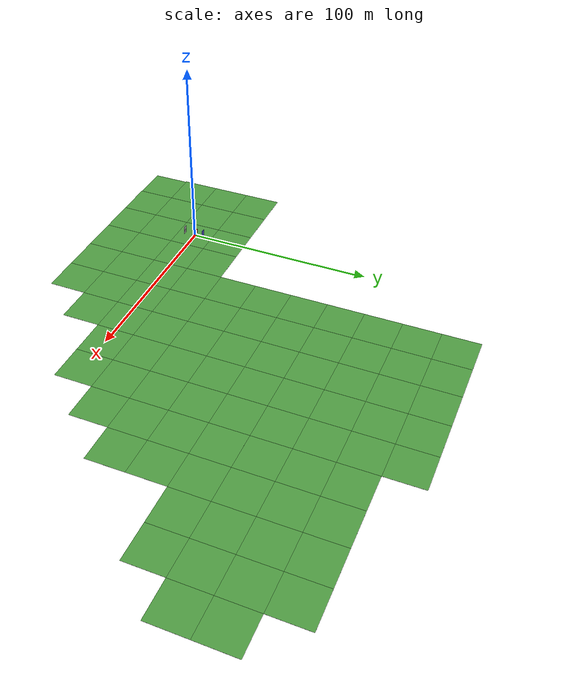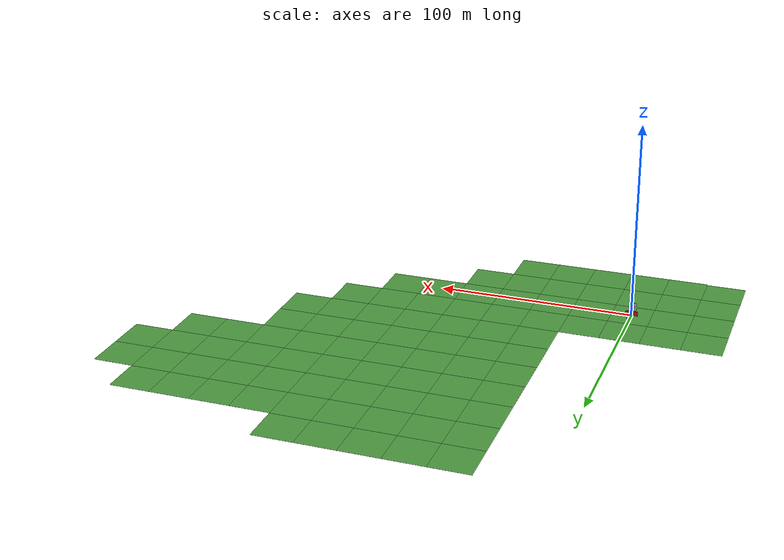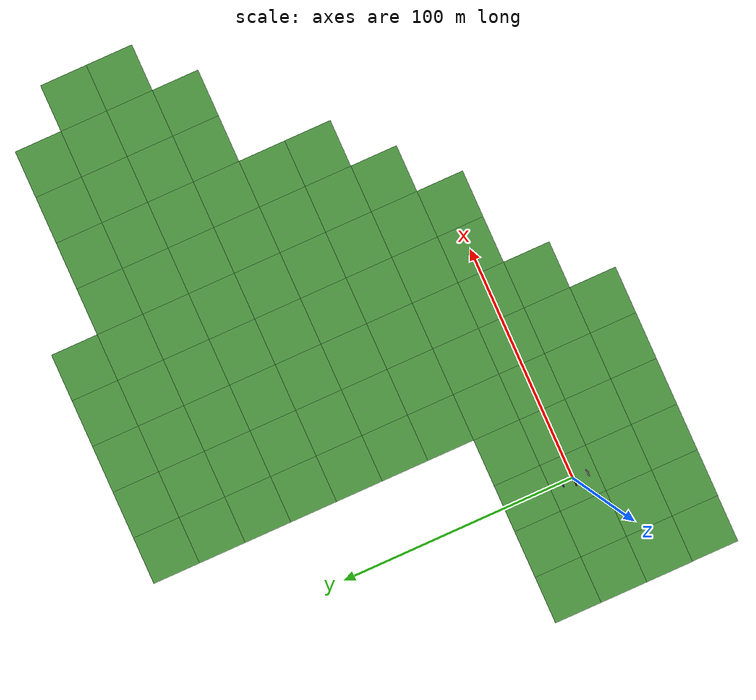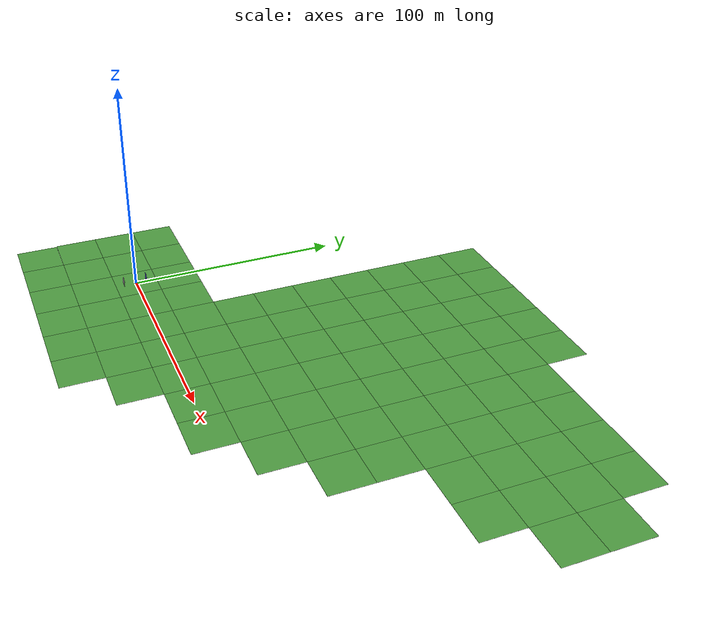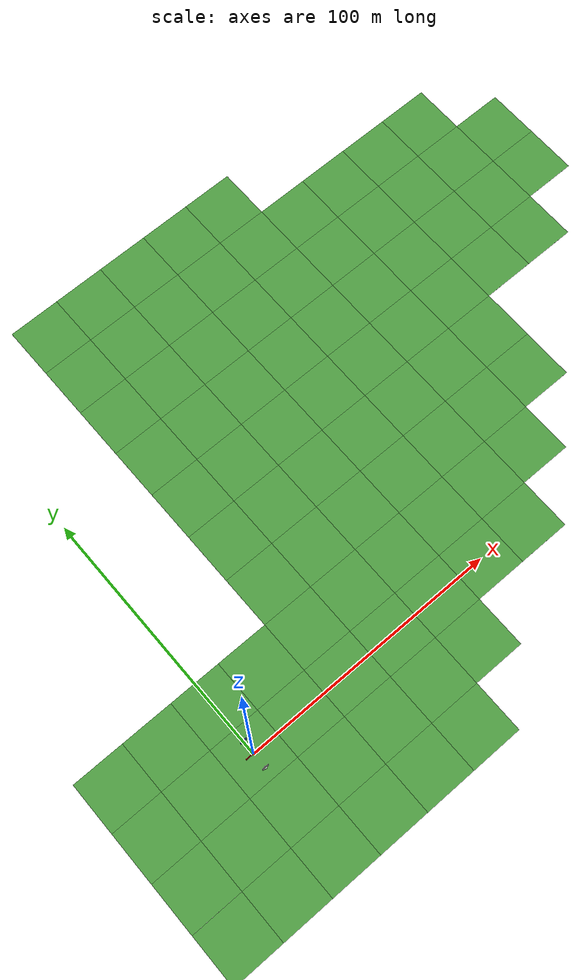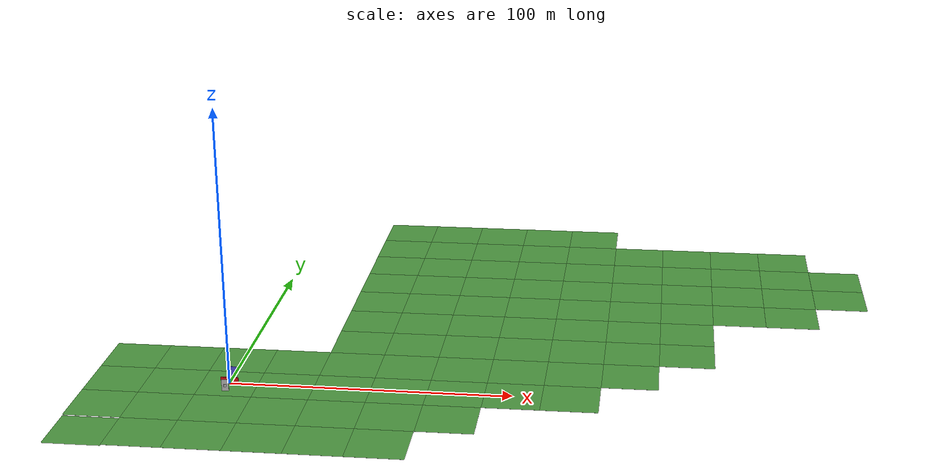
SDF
<sdf version="1.5">
 <world name="default">
  <include><uri>model://wall1</uri><pose>0 5 0 0 0 0</pose></include>
  <include><uri>model://wall2</uri></include>
  <include><uri>model://wall3</uri><pose>0 -6 0 0 0 0</pose></include>
  <include><uri>model://wall4</uri><pose>0 -6 0 0 0 0</pose></include>
  <include><uri>model://sun</uri></include>
  <light name="user_point_light_0" type="point">
   <pose>7.53258 -10.5204 1 0 -0 0</pose>
   <diffuse>0.5 0.5 0.5 1</diffuse>
   <specular>0.1 0.1 0.1 1</specular>
   <attenuation>
    <range>37</range>
    <constant>1</constant>
    <linear>0.05</linear>
    <quadratic>0.001</quadratic>
   </attenuation>
   <cast_shadows>0</cast_shadows>
   <direction>0 0 -1</direction>
  </light>
  <light name="user_point_light_0_clone" type="point">
   <pose>-13.5592 -18.4336 10 0 -0 0</pose>
   <diffuse>0.498039 0.498039 0.498039 1</diffuse>
   <specular>0 0 0 1</specular>
   <direction>0 0 -1</direction>
   <attenuation>
    <range>37</range>
    <constant>1</constant>
    <linear>0.05</linear>
    <quadratic>0.001</quadratic>
   </attenuation>
  </light>
  <light name="user_point_light_1" type="point">
   <pose>-11.0322 15.4092 1 0 -0 0</pose>
   <diffuse>0.5 0.5 0.5 1</diffuse>
   <specular>0.1 0.1 0.1 1</specular>
   <attenuation>
    <range>20</range>
    <constant>0.5</constant>
    <linear>0.01</linear>
    <quadratic>0.001</quadratic>
   </attenuation>
   <cast_shadows>0</cast_shadows>
   <direction>0 0 -1</direction>
  </light>
  <light name="user_point_light_2" type="point">
   <pose>7.67436 15.2643 1 0 -0 0</pose>
   <diffuse>0.5 0.5 0.5 1</diffuse>
   <specular>0.1 0.1 0.1 1</specular>
   <attenuation>
    <range>20</range>
    <constant>0.5</constant>
    <linear>0.01</linear>
    <quadratic>0.001</quadratic>
   </attenuation>
   <cast_shadows>0</cast_shadows>
   <direction>0 0 -1</direction>
  </light>
  <light name="user_point_light_3" type="point">
   <pose>-13.7195 0.042174 1 0 -0 0</pose>
   <diffuse>0.5 0.5 0.5 1</diffuse>
   <specular>0.1 0.1 0.1 1</specular>
   <attenuation>
    <range>20</range>
    <constant>0.5</constant>
    <linear>0.01</linear>
    <quadratic>0.001</quadratic>
   </attenuation>
   <cast_shadows>0</cast_shadows>
   <direction>0 0 -1</direction>
  </light>
  <light name="user_point_light_4" type="point">
   <pose>12.95 2.24523 1 0 -0 0</pose>
   <diffuse>0.5 0.5 0.5 1</diffuse>
   <specular>0.1 0.1 0.1 1</specular>
   <attenuation>
    <range>20</range>
    <constant>0.5</constant>
    <linear>0.01</linear>
    <quadratic>0.001</quadratic>
   </attenuation>
   <cast_shadows>0</cast_shadows>
   <direction>0 0 -1</direction>
  </light>
  <include><uri>model://grass_plane</uri></include>
  <scene>
   <shadows>0</shadows>
   <ambient>0.4 0.4 0.4 1.0</ambient>
   <background>0.7 0.7 0.7 1</background>
   <sky><clouds><speed>12</speed></clouds></sky>
  </scene>
  <plugin name="ros_interface_plugin" filename="librotors_gazebo_ros_interface_plugin.so"/>
  <physics name="default_physics" default="0" type="ode">
   <gravity>0 0 -9.8066</gravity>
   <ode>
    <solver>
     <type>quick</type>
     <iters>10</iters>
     <sor>1.3</sor>
     <use_dynamic_moi_rescaling>0</use_dynamic_moi_rescaling>
    </solver>
    <constraints>
     <cfm>0</cfm>
     <erp>0.2</erp>
     <contact_max_correcting_vel>100</contact_max_correcting_vel>
     <contact_surface_layer>0.001</contact_surface_layer>
    </constraints>
   </ode>
   <max_step_size>0.004</max_step_size>
   <real_time_factor>1</real_time_factor>
   <real_time_update_rate>250</real_time_update_rate>
   <magnetic_field>6.0e-6 2.3e-5 -4.2e-5</magnetic_field>
  </physics>
 </world>
</sdf>

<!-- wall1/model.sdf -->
<sdf version='1.6'>
  <model name='wall1'>
    <link name='pared1'>
      <pose frame=''>0 0 2.133 0 0 0</pose>
      <inertial>
        <mass>10000</mass>
        <inertia>
          <ixx>99999999999</ixx>
          <ixy>0</ixy>
          <ixz>0</ixz>
          <iyy>99999999999</iyy>
          <iyz>0</iyz>
          <izz>99999999999</izz>
        </inertia>
        <pose frame=''>0 0 0 0 -0 0</pose>
      </inertial>
      <self_collide>0</self_collide>
      <kinematic>0</kinematic>
      <gravity>1</gravity>
      <visual name='visual'>
        <geometry>
          <box>
            <size>2.5 0.150783 4.266</size>
          </box>
        </geometry>
        <material>
          <!-- Blue -->
          <ambient>0 0 1 1</ambient>
          <diffuse>0.3 0.3 0.8 1</diffuse>
          <specular>0.01 0.1 0.01 1</specular>
          <emissive>0 0 0 1</emissive>
          <shader type='vertex'>
            <normal_map>__default__</normal_map>
          </shader>
        </material>
        <pose frame=''>0 0 0 0 -0 0</pose>
        <transparency>0</transparency>
        <cast_shadows>1</cast_shadows>
      </visual>
      <collision name='collision'>
        <laser_retro>0</laser_retro>
        <max_contacts>10</max_contacts>
        <pose frame=''>0 0 0 0 -0 0</pose>
        <geometry>
          <box>
            <size>2.5 0.150783 4.266</size>
          </box>
        </geometry>
        <surface>
          <friction>
            <ode>
              <mu>100</mu>
              <mu2>100</mu2>
              <fdir1>0 0 0</fdir1>
              <slip1>0</slip1>
              <slip2>0</slip2>
            </ode>
            <torsional>
              <coefficient>1</coefficient>
              <patch_radius>0</patch_radius>
              <surface_radius>0</surface_radius>
              <use_patch_radius>1</use_patch_radius>
              <ode>
                <slip>0</slip>
              </ode>
            </torsional>
          </friction>
          <bounce>
            <restitution_coefficient>0</restitution_coefficient>
            <threshold>1e+06</threshold>
          </bounce>
          <contact>
            <collide_without_contact>0</collide_without_contact>
            <collide_without_contact_bitmask>1</collide_without_contact_bitmask>
            <collide_bitmask>1</collide_bitmask>
            <ode>
              <soft_cfm>0</soft_cfm>
              <soft_erp>0.2</soft_erp>
              <kp>1e+13</kp>
              <kd>1</kd>
              <max_vel>0.01</max_vel>
              <min_depth>0</min_depth>
            </ode>
            <bullet>
              <split_impulse>1</split_impulse>
              <split_impulse_penetration_threshold>-0.01</split_impulse_penetration_threshold>
              <soft_cfm>0</soft_cfm>
              <soft_erp>0.2</soft_erp>
              <kp>1e+13</kp>
              <kd>1</kd>
            </bullet>
          </contact>
        </surface>
      </collision>
    </link>
    <static>0</static>
    <allow_auto_disable>1</allow_auto_disable>
    <plugin name="wall1plugin" filename="libwall1plugin.so"/>
  </model>
</sdf>

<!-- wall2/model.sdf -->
<sdf version='1.6'>
  <model name='wall2'>
    <link name='pared1'>
      <gravity>0</gravity>
      <pose frame=''>0 0 1.2 0 0 0</pose>
      <inertial>
        <mass>10000</mass>
        <inertia>
          <ixx>99999999999</ixx>
          <ixy>0</ixy>
          <ixz>0</ixz>
          <iyy>99999999999</iyy>
          <iyz>0</iyz>
          <izz>99999999999</izz>
        </inertia>
        <pose frame=''>0 0 0 0 -0 0</pose>
      </inertial>
      <self_collide>0</self_collide>
      <kinematic>0</kinematic>
      <gravity>1</gravity>
      <visual name='visual'>
        <geometry>
          <box>
            <size>6.266 0.150783 2.4</size>
          </box>
        </geometry>
        <material>
          <!-- Red -->
          <ambient>0.5 0.1 0.1 1</ambient>
          <diffuse>0.8 0.05 0.05 1</diffuse>
          <specular>0.01 0.1 0.01 1</specular>
          <emissive>0.1 0 0.1 1</emissive>
          <shader type='vertex'>
            <normal_map>__default__</normal_map>
          </shader>
        </material>
        <pose frame=''>0 0 0 0 -0 0</pose>
        <transparency>0</transparency>
        <cast_shadows>1</cast_shadows>
      </visual>
      <collision name='collision'>
        <laser_retro>0</laser_retro>
        <max_contacts>10</max_contacts>
        <pose frame=''>0 0 0 0 -0 0</pose>
        <geometry>
          <box>
            <size>6.266 0.150783 2.4</size>
          </box>
        </geometry>
        <surface>
          <friction>
            <ode>
              <mu>100</mu>
              <mu2>100</mu2>
              <fdir1>0 0 0</fdir1>
              <slip1>0</slip1>
              <slip2>0</slip2>
            </ode>
            <torsional>
              <coefficient>1</coefficient>
              <patch_radius>0</patch_radius>
              <surface_radius>0</surface_radius>
              <use_patch_radius>1</use_patch_radius>
              <ode>
                <slip>0</slip>
              </ode>
            </torsional>
          </friction>
          <bounce>
            <restitution_coefficient>0</restitution_coefficient>
            <threshold>1e+06</threshold>
          </bounce>
          <contact>
            <collide_without_contact>0</collide_without_contact>
            <collide_without_contact_bitmask>1</collide_without_contact_bitmask>
            <collide_bitmask>1</collide_bitmask>
            <ode>
              <soft_cfm>0</soft_cfm>
              <soft_erp>0.2</soft_erp>
              <kp>1e+13</kp>
              <kd>1</kd>
              <max_vel>0.01</max_vel>
              <min_depth>0</min_depth>
            </ode>
            <bullet>
              <split_impulse>1</split_impulse>
              <split_impulse_penetration_threshold>-0.01</split_impulse_penetration_threshold>
              <soft_cfm>0</soft_cfm>
              <soft_erp>0.2</soft_erp>
              <kp>1e+13</kp>
              <kd>1</kd>
            </bullet>
          </contact>
        </surface>
      </collision>
    </link>
    <static>0</static>
    <allow_auto_disable>1</allow_auto_disable>
    <plugin name="wall2plugin" filename="libwall2plugin.so"/>
  </model>
</sdf>

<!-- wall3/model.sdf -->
<sdf version='1.6'>
  <model name='wall3'>
    <link name='pared1'>
      <pose frame=''>0 0 2.133 0 0 0</pose>
      <inertial>
        <mass>10000</mass>
        <inertia>
          <ixx>99999999999</ixx>
          <ixy>0</ixy>
          <ixz>0</ixz>
          <iyy>99999999999</iyy>
          <iyz>0</iyz>
          <izz>99999999999</izz>
        </inertia>
        <pose frame=''>0 0 0 0 -0 0</pose>
      </inertial>
      <self_collide>0</self_collide>
      <kinematic>0</kinematic>
      <gravity>1</gravity>
      <visual name='visual'>
        <geometry>
          <box>
            <size>2.5 0.150783 4.266</size>
          </box>
        </geometry>
        <material>
          <!-- Cyan -->
          <ambient>0.698039 0.698039 0.698039 1</ambient>
          <diffuse>0.698039 0.698039 0.698039 1</diffuse>
          <specular>0.898039 0.898039 0.898039 1</specular>
          <emissive>0 0.945098 0.980392 1</emissive>
          <shader type='vertex'>
            <normal_map>__default__</normal_map>
          </shader>
        </material>
        <pose frame=''>0 0 0 0 -0 0</pose>
        <transparency>0</transparency>
        <cast_shadows>1</cast_shadows>
      </visual>
      <collision name='collision'>
        <laser_retro>0</laser_retro>
        <max_contacts>10</max_contacts>
        <pose frame=''>0 0 0 0 -0 0</pose>
        <geometry>
          <box>
            <size>2.5 0.150783 4.266</size>
          </box>
        </geometry>
        <surface>
          <friction>
            <ode>
              <mu>100</mu>
              <mu2>100</mu2>
              <fdir1>0 0 0</fdir1>
              <slip1>0</slip1>
              <slip2>0</slip2>
            </ode>
            <torsional>
              <coefficient>1</coefficient>
              <patch_radius>0</patch_radius>
              <surface_radius>0</surface_radius>
              <use_patch_radius>1</use_patch_radius>
              <ode>
                <slip>0</slip>
              </ode>
            </torsional>
          </friction>
          <bounce>
            <restitution_coefficient>0</restitution_coefficient>
            <threshold>1e+06</threshold>
          </bounce>
          <contact>
            <collide_without_contact>0</collide_without_contact>
            <collide_without_contact_bitmask>1</collide_without_contact_bitmask>
            <collide_bitmask>1</collide_bitmask>
            <ode>
              <soft_cfm>0</soft_cfm>
              <soft_erp>0.2</soft_erp>
              <kp>1e+13</kp>
              <kd>1</kd>
              <max_vel>0.01</max_vel>
              <min_depth>0</min_depth>
            </ode>
            <bullet>
              <split_impulse>1</split_impulse>
              <split_impulse_penetration_threshold>-0.01</split_impulse_penetration_threshold>
              <soft_cfm>0</soft_cfm>
              <soft_erp>0.2</soft_erp>
              <kp>1e+13</kp>
              <kd>1</kd>
            </bullet>
          </contact>
        </surface>
      </collision>
    </link>
    <static>0</static>
    <allow_auto_disable>1</allow_auto_disable>
    <plugin name="wall3plugin" filename="libwall3plugin.so"/>
  </model>
</sdf>

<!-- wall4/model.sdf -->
<sdf version='1.6'>
  <model name='wall4'>
    <link name='pared1'>
      <pose frame=''>0 0 2.133 0 0 0</pose>
      <inertial>
        <mass>10000</mass>
        <inertia>
          <ixx>99999999999</ixx>
          <ixy>0</ixy>
          <ixz>0</ixz>
          <iyy>99999999999</iyy>
          <iyz>0</iyz>
          <izz>99999999999</izz>
        </inertia>
        <pose frame=''>0 0 0 0 -0 0</pose>
      </inertial>
      <self_collide>0</self_collide>
      <kinematic>0</kinematic>
      <gravity>1</gravity>
      <visual name='visual'>
        <geometry>
          <cylinder>
              <radius>0.5</radius>
              <length>1</length>
          </cylinder>
        </geometry>
        <material>
          <!-- Yellow -->
          <ambient>0.698039 0.698039 0.698039 1</ambient>
          <diffuse>0.698039 0.698039 0.698039 1</diffuse>
          <specular>0.898039 0.898039 0.898039 1</specular>
          <emissive>1 1 0 1</emissive>
          <shader type='vertex'>
            <normal_map>__default__</normal_map>
          </shader>
        </material>
        <pose frame=''>0 0 0 0 -0 0</pose>
        <transparency>0</transparency>
        <cast_shadows>1</cast_shadows>
      </visual>
      <collision name='collision'>
        <laser_retro>0</laser_retro>
        <max_contacts>10</max_contacts>
        <pose frame=''>0 0 0 0 -0 0</pose>
        <geometry>
          <cylinder>
              <radius>0.5</radius>
              <length>1</length>
            </cylinder>
        </geometry>
        <surface>
          <friction>
            <ode>
              <mu>100</mu>
              <mu2>100</mu2>
              <fdir1>0 0 0</fdir1>
              <slip1>0</slip1>
              <slip2>0</slip2>
            </ode>
            <torsional>
              <coefficient>1</coefficient>
              <patch_radius>0</patch_radius>
              <surface_radius>0</surface_radius>
              <use_patch_radius>1</use_patch_radius>
              <ode>
                <slip>0</slip>
              </ode>
            </torsional>
          </friction>
          <bounce>
            <restitution_coefficient>0</restitution_coefficient>
            <threshold>1e+06</threshold>
          </bounce>
          <contact>
            <collide_without_contact>0</collide_without_contact>
            <collide_without_contact_bitmask>1</collide_without_contact_bitmask>
            <collide_bitmask>1</collide_bitmask>
            <ode>
              <soft_cfm>0</soft_cfm>
              <soft_erp>0.2</soft_erp>
              <kp>1e+13</kp>
              <kd>1</kd>
              <max_vel>0.01</max_vel>
              <min_depth>0</min_depth>
            </ode>
            <bullet>
              <split_impulse>1</split_impulse>
              <split_impulse_penetration_threshold>-0.01</split_impulse_penetration_threshold>
              <soft_cfm>0</soft_cfm>
              <soft_erp>0.2</soft_erp>
              <kp>1e+13</kp>
              <kd>1</kd>
            </bullet>
          </contact>
        </surface>
      </collision>
    </link>
    <static>0</static>
    <allow_auto_disable>1</allow_auto_disable>
    <plugin name="wall4plugin" filename="libwall4plugin.so"/>
  </model>
</sdf>

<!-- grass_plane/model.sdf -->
<sdf version='1.4'>
  <model name='grass_plane'>
    <static>true</static>
    <link name='link'>
      <collision name='collision'>
        <geometry>
          <plane>
            <normal>0 0 1</normal>
            <size>500 500</size>
          </plane>
        </geometry>
        <surface>
          <friction>
            <ode>
              <mu>0.5</mu>
              <mu2>.5</mu2>
            </ode>
          </friction>
        </surface>
      </collision>

      <visual name='visual_0'>
        <pose>-40 -40 0 0 0 0</pose>

        <cast_shadows>false</cast_shadows>
        <geometry>
          <plane>
            <normal>0 0 1</normal>
            <size>20 20</size>
          </plane>
        </geometry>
        <material>
          <script>
            <uri>model://../model_source/models/grass_plane/materials/scripts</uri>
            <uri>model://../model_source/models/grass_plane/materials/textures</uri>
            <name>vrc/grass</name>
          </script>
        </material>
      </visual>

      <visual name='visual_1'>
        <pose>-20 -40 0 0 0 0</pose>

        <cast_shadows>false</cast_shadows>
        <geometry>
          <plane>
            <normal>0 0 1</normal>
            <size>20 20</size>
          </plane>
        </geometry>
        <material>
          <script>
            <uri>model://../model_source/models/grass_plane/materials/scripts</uri>
            <uri>model://../model_source/models/grass_plane/materials/textures</uri>
            <name>vrc/grass</name>
          </script>
        </material>
      </visual>

      <visual name='visual_2'>
        <pose>0 -40 0 0 0 0</pose>

        <cast_shadows>false</cast_shadows>
        <geometry>
          <plane>
            <normal>0 0 1</normal>
            <size>20 20</size>
          </plane>
        </geometry>
        <material>
          <script>
            <uri>model://../model_source/models/grass_plane/materials/scripts</uri>
            <uri>model://../model_source/models/grass_plane/materials/textures</uri>
            <name>vrc/grass</name>
          </script>
        </material>
      </visual>

      <visual name='visual_3'>
        <pose>20 -40 0 0 0 0</pose>

        <cast_shadows>false</cast_shadows>
        <geometry>
          <plane>
            <normal>0 0 1</normal>
            <size>20 20</size>
          </plane>
        </geometry>
        <material>
          <script>
            <uri>model://../model_source/models/grass_plane/materials/scripts</uri>
            <uri>model://../model_source/models/grass_plane/materials/textures</uri>
            <name>vrc/grass</name>
          </script>
        </material>
      </visual>

      <visual name='visual_4'>
        <pose>40 -40 0 0 0 0</pose>

        <cast_shadows>false</cast_shadows>
        <geometry>
          <plane>
            <normal>0 0 1</normal>
            <size>20 20</size>
          </plane>
        </geometry>
        <material>
          <script>
            <uri>model://../model_source/models/grass_plane/materials/scripts</uri>
            <uri>model://../model_source/models/grass_plane/materials/textures</uri>
            <name>vrc/grass</name>
          </script>
        </material>
      </visual>

      <visual name='visual_5'>
        <pose>60 -40 0 0 0 0</pose>

        <cast_shadows>false</cast_shadows>
        <geometry>
          <plane>
            <normal>0 0 1</normal>
            <size>20 20</size>
          </plane>
        </geometry>
        <material>
          <script>
            <uri>model://../model_source/models/grass_plane/materials/scripts</uri>
            <uri>model://../model_source/models/grass_plane/materials/textures</uri>
            <name>vrc/grass</name>
          </script>
        </material>
      </visual>

      <visual name='visual_6'>
        <pose>-40 -20 0 0 0 0</pose>

        <cast_shadows>false</cast_shadows>
        <geometry>
          <plane>
            <normal>0 0 1</normal>
            <size>20 20</size>
          </plane>
        </geometry>
        <material>
          <script>
            <uri>model://../model_source/models/grass_plane/materials/scripts</uri>
            <uri>model://../model_source/models/grass_plane/materials/textures</uri>
            <name>vrc/grass</name>
          </script>
        </material>
      </visual>

      <visual name='visual_7'>
        <pose>-20 -20 0 0 0 0</pose>

        <cast_shadows>false</cast_shadows>
        <geometry>
          <plane>
            <normal>0 0 1</normal>
            <size>20 20</size>
          </plane>
        </geometry>
        <material>
          <script>
            <uri>model://../model_source/models/grass_plane/materials/scripts</uri>
            <uri>model://../model_source/models/grass_plane/materials/textures</uri>
            <name>vrc/grass</name>
          </script>
        </material>
      </visual>

      <visual name='visual_8'>
        <pose>0 -20 0 0 0 0</pose>

        <cast_shadows>false</cast_shadows>
        <geometry>
          <plane>
            <normal>0 0 1</normal>
            <size>20 20</size>
          </plane>
        </geometry>
        <material>
          <script>
            <uri>model://../model_source/models/grass_plane/materials/scripts</uri>
            <uri>model://../model_source/models/grass_plane/materials/textures</uri>
            <name>vrc/grass</name>
          </script>
        </material>
      </visual>

      <visual name='visual_9'>
        <pose>20 -20 0 0 0 0</pose>

        <cast_shadows>false</cast_shadows>
        <geometry>
          <plane>
            <normal>0 0 1</normal>
            <size>20 20</size>
          </plane>
        </geometry>
        <material>
          <script>
            <uri>model://../model_source/models/grass_plane/materials/scripts</uri>
            <uri>model://../model_source/models/grass_plane/materials/textures</uri>
            <name>vrc/grass</name>
          </script>
        </material>
      </visual>

      <visual name='visual_10'>
        <pose>40 -20 0 0 0 0</pose>

        <cast_shadows>false</cast_shadows>
        <geometry>
          <plane>
            <normal>0 0 1</normal>
            <size>20 20</size>
          </plane>
        </geometry>
        <material>
          <script>
            <uri>model://../model_source/models/grass_plane/materials/scripts</uri>
            <uri>model://../model_source/models/grass_plane/materials/textures</uri>
            <name>vrc/grass</name>
          </script>
        </material>
      </visual>

      <visual name='visual_11'>
        <pose>60 -20 0 0 0 0</pose>

        <cast_shadows>false</cast_shadows>
        <geometry>
          <plane>
            <normal>0 0 1</normal>
            <size>20 20</size>
          </plane>
        </geometry>
        <material>
          <script>
            <uri>model://../model_source/models/grass_plane/materials/scripts</uri>
            <uri>model://../model_source/models/grass_plane/materials/textures</uri>
            <name>vrc/grass</name>
          </script>
        </material>
      </visual>

      <visual name='visual_12'>
        <pose>80 -20 0 0 0 0</pose>

        <cast_shadows>false</cast_shadows>
        <geometry>
          <plane>
            <normal>0 0 1</normal>
            <size>20 20</size>
          </plane>
        </geometry>
        <material>
          <script>
            <uri>model://../model_source/models/grass_plane/materials/scripts</uri>
            <uri>model://../model_source/models/grass_plane/materials/textures</uri>
            <name>vrc/grass</name>
          </script>
        </material>
      </visual>

      <visual name='visual_13'>
        <pose>-40 0 0 0 0 0</pose>

        <cast_shadows>false</cast_shadows>
        <geometry>
          <plane>
            <normal>0 0 1</normal>
            <size>20 20</size>
          </plane>
        </geometry>
        <material>
          <script>
            <uri>model://../model_source/models/grass_plane/materials/scripts</uri>
            <uri>model://../model_source/models/grass_plane/materials/textures</uri>
            <name>vrc/grass</name>
          </script>
        </material>
      </visual>

      <visual name='visual_14'>
        <pose>-20 0 0 0 0 0</pose>

        <cast_shadows>false</cast_shadows>
        <geometry>
          <plane>
            <normal>0 0 1</normal>
            <size>20 20</size>
          </plane>
        </geometry>
        <material>
          <script>
            <uri>model://../model_source/models/grass_plane/materials/scripts</uri>
            <uri>model://../model_source/models/grass_plane/materials/textures</uri>
            <name>vrc/grass</name>
          </script>
        </material>
      </visual>

      <visual name='visual_15'>
        <pose>0 0 0 0 0 0</pose>

        <cast_shadows>false</cast_shadows>
        <geometry>
          <plane>
            <normal>0 0 1</normal>
            <size>20 20</size>
          </plane>
        </geometry>
        <material>
          <script>
            <uri>model://../model_source/models/grass_plane/materials/scripts</uri>
            <uri>model://../model_source/models/grass_plane/materials/textures</uri>
            <name>vrc/grass</name>
          </script>
        </material>
      </visual>

      <visual name='visual_16'>
        <pose>20 0 0 0 0 0</pose>

        <cast_shadows>false</cast_shadows>
        <geometry>
          <plane>
            <normal>0 0 1</normal>
            <size>20 20</size>
          </plane>
        </geometry>
        <material>
          <script>
            <uri>model://../model_source/models/grass_plane/materials/scripts</uri>
            <uri>model://../model_source/models/grass_plane/materials/textures</uri>
            <name>vrc/grass</name>
          </script>
        </material>
      </visual>

      <visual name='visual_17'>
        <pose>40 0 0 0 0 0</pose>

        <cast_shadows>false</cast_shadows>
        <geometry>
          <plane>
            <normal>0 0 1</normal>
            <size>20 20</size>
          </plane>
        </geometry>
        <material>
          <script>
            <uri>model://../model_source/models/grass_plane/materials/scripts</uri>
            <uri>model://../model_source/models/grass_plane/materials/textures</uri>
            <name>vrc/grass</name>
          </script>
        </material>
      </visual>

      <visual name='visual_18'>
        <pose>60 0 0 0 0 0</pose>

        <cast_shadows>false</cast_shadows>
        <geometry>
          <plane>
            <normal>0 0 1</normal>
            <size>20 20</size>
          </plane>
        </geometry>
        <material>
          <script>
            <uri>model://../model_source/models/grass_plane/materials/scripts</uri>
            <uri>model://../model_source/models/grass_plane/materials/textures</uri>
            <name>vrc/grass</name>
          </script>
        </material>
      </visual>

      <visual name='visual_19'>
        <pose>80 0 0 0 0 0</pose>

        <cast_shadows>false</cast_shadows>
        <geometry>
          <plane>
            <normal>0 0 1</normal>
            <size>20 20</size>
          </plane>
        </geometry>
        <material>
          <script>
            <uri>model://../model_source/models/grass_plane/materials/scripts</uri>
            <uri>model://../model_source/models/grass_plane/materials/textures</uri>
            <name>vrc/grass</name>
          </script>
        </material>
      </visual>

      <visual name='visual_20'>
        <pose>100 0 0 0 0 0</pose>

        <cast_shadows>false</cast_shadows>
        <geometry>
          <plane>
            <normal>0 0 1</normal>
            <size>20 20</size>
          </plane>
        </geometry>
        <material>
          <script>
            <uri>model://../model_source/models/grass_plane/materials/scripts</uri>
            <uri>model://../model_source/models/grass_plane/materials/textures</uri>
            <name>vrc/grass</name>
          </script>
        </material>
      </visual>

      <visual name='visual_21'>
        <pose>120 0 0 0 0 0</pose>

        <cast_shadows>false</cast_shadows>
        <geometry>
          <plane>
            <normal>0 0 1</normal>
            <size>20 20</size>
          </plane>
        </geometry>
        <material>
          <script>
            <uri>model://../model_source/models/grass_plane/materials/scripts</uri>
            <uri>model://../model_source/models/grass_plane/materials/textures</uri>
            <name>vrc/grass</name>
          </script>
        </material>
      </visual>

      <visual name='visual_22'>
        <pose>-40 20 0 0 0 0</pose>

        <cast_shadows>false</cast_shadows>
        <geometry>
          <plane>
            <normal>0 0 1</normal>
            <size>20 20</size>
          </plane>
        </geometry>
        <material>
          <script>
            <uri>model://../model_source/models/grass_plane/materials/scripts</uri>
            <uri>model://../model_source/models/grass_plane/materials/textures</uri>
            <name>vrc/grass</name>
          </script>
        </material>
      </visual>

      <visual name='visual_23'>
        <pose>-20 20 0 0 0 0</pose>

        <cast_shadows>false</cast_shadows>
        <geometry>
          <plane>
            <normal>0 0 1</normal>
            <size>20 20</size>
          </plane>
        </geometry>
        <material>
          <script>
            <uri>model://../model_source/models/grass_plane/materials/scripts</uri>
            <uri>model://../model_source/models/grass_plane/materials/textures</uri>
            <name>vrc/grass</name>
          </script>
        </material>
      </visual>

      <visual name='visual_24'>
        <pose>0 20 0 0 0 0</pose>

        <cast_shadows>false</cast_shadows>
        <geometry>
          <plane>
            <normal>0 0 1</normal>
            <size>20 20</size>
          </plane>
        </geometry>
        <material>
          <script>
            <uri>model://../model_source/models/grass_plane/materials/scripts</uri>
            <uri>model://../model_source/models/grass_plane/materials/textures</uri>
            <name>vrc/grass</name>
          </script>
        </material>
      </visual>

      <visual name='visual_25'>
        <pose>20 20 0 0 0 0</pose>

        <cast_shadows>false</cast_shadows>
        <geometry>
          <plane>
            <normal>0 0 1</normal>
            <size>20 20</size>
          </plane>
        </geometry>
        <material>
          <script>
            <uri>model://../model_source/models/grass_plane/materials/scripts</uri>
            <uri>model://../model_source/models/grass_plane/materials/textures</uri>
            <name>vrc/grass</name>
          </script>
        </material>
      </visual>

      <visual name='visual_26'>
        <pose>40 20 0 0 0 0</pose>

        <cast_shadows>false</cast_shadows>
        <geometry>
          <plane>
            <normal>0 0 1</normal>
            <size>20 20</size>
          </plane>
        </geometry>
        <material>
          <script>
            <uri>model://../model_source/models/grass_plane/materials/scripts</uri>
            <uri>model://../model_source/models/grass_plane/materials/textures</uri>
            <name>vrc/grass</name>
          </script>
        </material>
      </visual>

      <visual name='visual_27'>
        <pose>60 20 0 0 0 0</pose>

        <cast_shadows>false</cast_shadows>
        <geometry>
          <plane>
            <normal>0 0 1</normal>
            <size>20 20</size>
          </plane>
        </geometry>
        <material>
          <script>
            <uri>model://../model_source/models/grass_plane/materials/scripts</uri>
            <uri>model://../model_source/models/grass_plane/materials/textures</uri>
            <name>vrc/grass</name>
          </script>
        </material>
      </visual>

      <visual name='visual_28'>
        <pose>80 20 0 0 0 0</pose>

        <cast_shadows>false</cast_shadows>
        <geometry>
          <plane>
            <normal>0 0 1</normal>
            <size>20 20</size>
          </plane>
        </geometry>
        <material>
          <script>
            <uri>model://../model_source/models/grass_plane/materials/scripts</uri>
            <uri>model://../model_source/models/grass_plane/materials/textures</uri>
            <name>vrc/grass</name>
          </script>
        </material>
      </visual>

      <visual name='visual_29'>
        <pose>100 20 0 0 0 0</pose>

        <cast_shadows>false</cast_shadows>
        <geometry>
          <plane>
            <normal>0 0 1</normal>
            <size>20 20</size>
          </plane>
        </geometry>
        <material>
          <script>
            <uri>model://../model_source/models/grass_plane/materials/scripts</uri>
            <uri>model://../model_source/models/grass_plane/materials/textures</uri>
            <name>vrc/grass</name>
          </script>
        </material>
      </visual>

      <visual name='visual_30'>
        <pose>120 20 0 0 0 0</pose>

        <cast_shadows>false</cast_shadows>
        <geometry>
          <plane>
            <normal>0 0 1</normal>
            <size>20 20</size>
          </plane>
        </geometry>
        <material>
          <script>
            <uri>model://../model_source/models/grass_plane/materials/scripts</uri>
            <uri>model://../model_source/models/grass_plane/materials/textures</uri>
            <name>vrc/grass</name>
          </script>
        </material>
      </visual>

      <visual name='visual_31'>
        <pose>140 20 0 0 0 0</pose>

        <cast_shadows>false</cast_shadows>
        <geometry>
          <plane>
            <normal>0 0 1</normal>
            <size>20 20</size>
          </plane>
        </geometry>
        <material>
          <script>
            <uri>model://../model_source/models/grass_plane/materials/scripts</uri>
            <uri>model://../model_source/models/grass_plane/materials/textures</uri>
            <name>vrc/grass</name>
          </script>
        </material>
      </visual>

      <visual name='visual_32'>
        <pose>40 40 0 0 0 0</pose>

        <cast_shadows>false</cast_shadows>
        <geometry>
          <plane>
            <normal>0 0 1</normal>
            <size>20 20</size>
          </plane>
        </geometry>
        <material>
          <script>
            <uri>model://../model_source/models/grass_plane/materials/scripts</uri>
            <uri>model://../model_source/models/grass_plane/materials/textures</uri>
            <name>vrc/grass</name>
          </script>
        </material>
      </visual>

      <visual name='visual_33'>
        <pose>60 40 0 0 0 0</pose>

        <cast_shadows>false</cast_shadows>
        <geometry>
          <plane>
            <normal>0 0 1</normal>
            <size>20 20</size>
          </plane>
        </geometry>
        <material>
          <script>
            <uri>model://../model_source/models/grass_plane/materials/scripts</uri>
            <uri>model://../model_source/models/grass_plane/materials/textures</uri>
            <name>vrc/grass</name>
          </script>
        </material>
      </visual>

      <visual name='visual_34'>
        <pose>80 40 0 0 0 0</pose>

        <cast_shadows>false</cast_shadows>
        <geometry>
          <plane>
            <normal>0 0 1</normal>
            <size>20 20</size>
          </plane>
        </geometry>
        <material>
          <script>
            <uri>model://../model_source/models/grass_plane/materials/scripts</uri>
            <uri>model://../model_source/models/grass_plane/materials/textures</uri>
            <name>vrc/grass</name>
          </script>
        </material>
      </visual>

      <visual name='visual_35'>
        <pose>100 40 0 0 0 0</pose>

        <cast_shadows>false</cast_shadows>
        <geometry>
          <plane>
            <normal>0 0 1</normal>
            <size>20 20</size>
          </plane>
        </geometry>
        <material>
          <script>
            <uri>model://../model_source/models/grass_plane/materials/scripts</uri>
            <uri>model://../model_source/models/grass_plane/materials/textures</uri>
            <name>vrc/grass</name>
          </script>
        </material>
      </visual>

      <visual name='visual_36'>
        <pose>120 40 0 0 0 0</pose>

        <cast_shadows>false</cast_shadows>
        <geometry>
          <plane>
            <normal>0 0 1</normal>
            <size>20 20</size>
          </plane>
        </geometry>
        <material>
          <script>
            <uri>model://../model_source/models/grass_plane/materials/scripts</uri>
            <uri>model://../model_source/models/grass_plane/materials/textures</uri>
            <name>vrc/grass</name>
          </script>
        </material>
      </visual>

      <visual name='visual_37'>
        <pose>140 40 0 0 0 0</pose>

        <cast_shadows>false</cast_shadows>
        <geometry>
          <plane>
            <normal>0 0 1</normal>
            <size>20 20</size>
          </plane>
        </geometry>
        <material>
          <script>
            <uri>model://../model_source/models/grass_plane/materials/scripts</uri>
            <uri>model://../model_source/models/grass_plane/materials/textures</uri>
            <name>vrc/grass</name>
          </script>
        </material>
      </visual>

      <visual name='visual_38'>
        <pose>160 40 0 0 0 0</pose>

        <cast_shadows>false</cast_shadows>
        <geometry>
          <plane>
            <normal>0 0 1</normal>
            <size>20 20</size>
          </plane>
        </geometry>
        <material>
          <script>
            <uri>model://../model_source/models/grass_plane/materials/scripts</uri>
            <uri>model://../model_source/models/grass_plane/materials/textures</uri>
            <name>vrc/grass</name>
          </script>
        </material>
      </visual>

      <visual name='visual_39'>
        <pose>40 60 0 0 0 0</pose>

        <cast_shadows>false</cast_shadows>
        <geometry>
          <plane>
            <normal>0 0 1</normal>
            <size>20 20</size>
          </plane>
        </geometry>
        <material>
          <script>
            <uri>model://../model_source/models/grass_plane/materials/scripts</uri>
            <uri>model://../model_source/models/grass_plane/materials/textures</uri>
            <name>vrc/grass</name>
          </script>
        </material>
      </visual>

      <visual name='visual_40'>
        <pose>60 60 0 0 0 0</pose>

        <cast_shadows>false</cast_shadows>
        <geometry>
          <plane>
            <normal>0 0 1</normal>
            <size>20 20</size>
          </plane>
        </geometry>
        <material>
          <script>
            <uri>model://../model_source/models/grass_plane/materials/scripts</uri>
            <uri>model://../model_source/models/grass_plane/materials/textures</uri>
            <name>vrc/grass</name>
          </script>
        </material>
      </visual>

      <visual name='visual_41'>
        <pose>80 60 0 0 0 0</pose>

        <cast_shadows>false</cast_shadows>
        <geometry>
          <plane>
            <normal>0 0 1</normal>
            <size>20 20</size>
          </plane>
        </geometry>
        <material>
          <script>
            <uri>model://../model_source/models/grass_plane/materials/scripts</uri>
            <uri>model://../model_source/models/grass_plane/materials/textures</uri>
            <name>vrc/grass</name>
          </script>
        </material>
      </visual>

      <visual name='visual_42'>
        <pose>100 60 0 0 0 0</pose>

        <cast_shadows>false</cast_shadows>
        <geometry>
          <plane>
            <normal>0 0 1</normal>
            <size>20 20</size>
          </plane>
        </geometry>
        <material>
          <script>
            <uri>model://../model_source/models/grass_plane/materials/scripts</uri>
            <uri>model://../model_source/models/grass_plane/materials/textures</uri>
            <name>vrc/grass</name>
          </script>
        </material>
      </visual>

      <visual name='visual_43'>
        <pose>120 60 0 0 0 0</pose>

        <cast_shadows>false</cast_shadows>
        <geometry>
          <plane>
            <normal>0 0 1</normal>
            <size>20 20</size>
          </plane>
        </geometry>
        <material>
          <script>
            <uri>model://../model_source/models/grass_plane/materials/scripts</uri>
            <uri>model://../model_source/models/grass_plane/materials/textures</uri>
            <name>vrc/grass</name>
          </script>
        </material>
      </visual>

      <visual name='visual_44'>
        <pose>140 60 0 0 0 0</pose>

        <cast_shadows>false</cast_shadows>
        <geometry>
          <plane>
            <normal>0 0 1</normal>
            <size>20 20</size>
          </plane>
        </geometry>
        <material>
          <script>
            <uri>model://../model_source/models/grass_plane/materials/scripts</uri>
            <uri>model://../model_source/models/grass_plane/materials/textures</uri>
            <name>vrc/grass</name>
          </script>
        </material>
      </visual>

      <visual name='visual_45'>
        <pose>160 60 0 0 0 0</pose>

        <cast_shadows>false</cast_shadows>
        <geometry>
          <plane>
            <normal>0 0 1</normal>
            <size>20 20</size>
          </plane>
        </geometry>
        <material>
          <script>
            <uri>model://../model_source/models/grass_plane/materials/scripts</uri>
            <uri>model://../model_source/models/grass_plane/materials/textures</uri>
            <name>vrc/grass</name>
          </script>
        </material>
      </visual>

      <visual name='visual_46'>
        <pose>40 80 0 0 0 0</pose>

        <cast_shadows>false</cast_shadows>
        <geometry>
          <plane>
            <normal>0 0 1</normal>
            <size>20 20</size>
          </plane>
        </geometry>
        <material>
          <script>
            <uri>model://../model_source/models/grass_plane/materials/scripts</uri>
            <uri>model://../model_source/models/grass_plane/materials/textures</uri>
            <name>vrc/grass</name>
          </script>
        </material>
      </visual>

      <visual name='visual_47'>
        <pose>60 80 0 0 0 0</pose>

        <cast_shadows>false</cast_shadows>
        <geometry>
          <plane>
            <normal>0 0 1</normal>
            <size>20 20</size>
          </plane>
        </geometry>
        <material>
          <script>
            <uri>model://../model_source/models/grass_plane/materials/scripts</uri>
            <uri>model://../model_source/models/grass_plane/materials/textures</uri>
            <name>vrc/grass</name>
          </script>
        </material>
      </visual>

      <visual name='visual_48'>
        <pose>80 80 0 0 0 0</pose>

        <cast_shadows>false</cast_shadows>
        <geometry>
          <plane>
            <normal>0 0 1</normal>
            <size>20 20</size>
          </plane>
        </geometry>
        <material>
          <script>
            <uri>model://../model_source/models/grass_plane/materials/scripts</uri>
            <uri>model://../model_source/models/grass_plane/materials/textures</uri>
            <name>vrc/grass</name>
          </script>
        </material>
      </visual>

      <visual name='visual_49'>
        <pose>100 80 0 0 0 0</pose>

        <cast_shadows>false</cast_shadows>
        <geometry>
          <plane>
            <normal>0 0 1</normal>
            <size>20 20</size>
          </plane>
        </geometry>
        <material>
          <script>
            <uri>model://../model_source/models/grass_plane/materials/scripts</uri>
            <uri>model://../model_source/models/grass_plane/materials/textures</uri>
            <name>vrc/grass</name>
          </script>
        </material>
      </visual>

      <visual name='visual_50'>
        <pose>120 80 0 0 0 0</pose>

        <cast_shadows>false</cast_shadows>
        <geometry>
          <plane>
            <normal>0 0 1</normal>
            <size>20 20</size>
          </plane>
        </geometry>
        <material>
          <script>
            <uri>model://../model_source/models/grass_plane/materials/scripts</uri>
            <uri>model://../model_source/models/grass_plane/materials/textures</uri>
            <name>vrc/grass</name>
          </script>
        </material>
      </visual>

      <visual name='visual_51'>
        <pose>140 80 0 0 0 0</pose>

        <cast_shadows>false</cast_shadows>
        <geometry>
          <plane>
            <normal>0 0 1</normal>
            <size>20 20</size>
          </plane>
        </geometry>
        <material>
          <script>
            <uri>model://../model_source/models/grass_plane/materials/scripts</uri>
            <uri>model://../model_source/models/grass_plane/materials/textures</uri>
            <name>vrc/grass</name>
          </script>
        </material>
      </visual>

      <visual name='visual_52'>
        <pose>160 80 0 0 0 0</pose>

        <cast_shadows>false</cast_shadows>
        <geometry>
          <plane>
            <normal>0 0 1</normal>
            <size>20 20</size>
          </plane>
        </geometry>
        <material>
          <script>
            <uri>model://../model_source/models/grass_plane/materials/scripts</uri>
            <uri>model://../model_source/models/grass_plane/materials/textures</uri>
            <name>vrc/grass</name>
          </script>
        </material>
      </visual>

      <visual name='visual_53'>
        <pose>180 80 0 0 0 0</pose>

        <cast_shadows>false</cast_shadows>
        <geometry>
          <plane>
            <normal>0 0 1</normal>
            <size>20 20</size>
          </plane>
        </geometry>
        <material>
          <script>
            <uri>model://../model_source/models/grass_plane/materials/scripts</uri>
            <uri>model://../model_source/models/grass_plane/materials/textures</uri>
            <name>vrc/grass</name>
          </script>
        </material>
      </visual>

      <visual name='visual_54'>
        <pose>200 80 0 0 0 0</pose>

        <cast_shadows>false</cast_shadows>
        <geometry>
          <plane>
            <normal>0 0 1</normal>
            <size>20 20</size>
          </plane>
        </geometry>
        <material>
          <script>
            <uri>model://../model_source/models/grass_plane/materials/scripts</uri>
            <uri>model://../model_source/models/grass_plane/materials/textures</uri>
            <name>vrc/grass</name>
          </script>
        </material>
      </visual>

      <visual name='visual_55'>
        <pose>40 100 0 0 0 0</pose>

        <cast_shadows>false</cast_shadows>
        <geometry>
          <plane>
            <normal>0 0 1</normal>
            <size>20 20</size>
          </plane>
        </geometry>
        <material>
          <script>
            <uri>model://../model_source/models/grass_plane/materials/scripts</uri>
            <uri>model://../model_source/models/grass_plane/materials/textures</uri>
            <name>vrc/grass</name>
          </script>
        </material>
      </visual>

      <visual name='visual_56'>
        <pose>60 100 0 0 0 0</pose>

        <cast_shadows>false</cast_shadows>
        <geometry>
          <plane>
            <normal>0 0 1</normal>
            <size>20 20</size>
          </plane>
        </geometry>
        <material>
          <script>
            <uri>model://../model_source/models/grass_plane/materials/scripts</uri>
            <uri>model://../model_source/models/grass_plane/materials/textures</uri>
            <name>vrc/grass</name>
          </script>
        </material>
      </visual>

      <visual name='visual_57'>
        <pose>80 100 0 0 0 0</pose>

        <cast_shadows>false</cast_shadows>
        <geometry>
          <plane>
            <normal>0 0 1</normal>
            <size>20 20</size>
          </plane>
        </geometry>
        <material>
          <script>
            <uri>model://../model_source/models/grass_plane/materials/scripts</uri>
            <uri>model://../model_source/models/grass_plane/materials/textures</uri>
            <name>vrc/grass</name>
          </script>
        </material>
      </visual>

      <visual name='visual_58'>
        <pose>100 100 0 0 0 0</pose>

        <cast_shadows>false</cast_shadows>
        <geometry>
          <plane>
            <normal>0 0 1</normal>
            <size>20 20</size>
          </plane>
        </geometry>
        <material>
          <script>
            <uri>model://../model_source/models/grass_plane/materials/scripts</uri>
            <uri>model://../model_source/models/grass_plane/materials/textures</uri>
            <name>vrc/grass</name>
          </script>
        </material>
      </visual>

      <visual name='visual_59'>
        <pose>120 100 0 0 0 0</pose>

        <cast_shadows>false</cast_shadows>
        <geometry>
          <plane>
            <normal>0 0 1</normal>
            <size>20 20</size>
          </plane>
        </geometry>
        <material>
          <script>
            <uri>model://../model_source/models/grass_plane/materials/scripts</uri>
            <uri>model://../model_source/models/grass_plane/materials/textures</uri>
            <name>vrc/grass</name>
          </script>
        </material>
      </visual>

      <visual name='visual_60'>
        <pose>140 100 0 0 0 0</pose>

        <cast_shadows>false</cast_shadows>
        <geometry>
          <plane>
            <normal>0 0 1</normal>
            <size>20 20</size>
          </plane>
        </geometry>
        <material>
          <script>
            <uri>model://../model_source/models/grass_plane/materials/scripts</uri>
            <uri>model://../model_source/models/grass_plane/materials/textures</uri>
            <name>vrc/grass</name>
          </script>
        </material>
      </visual>

      <visual name='visual_61'>
        <pose>160 100 0 0 0 0</pose>

        <cast_shadows>false</cast_shadows>
        <geometry>
          <plane>
            <normal>0 0 1</normal>
            <size>20 20</size>
          </plane>
        </geometry>
        <material>
          <script>
            <uri>model://../model_source/models/grass_plane/materials/scripts</uri>
            <uri>model://../model_source/models/grass_plane/materials/textures</uri>
            <name>vrc/grass</name>
          </script>
        </material>
      </visual>

      <visual name='visual_62'>
        <pose>180 100 0 0 0 0</pose>

        <cast_shadows>false</cast_shadows>
        <geometry>
          <plane>
            <normal>0 0 1</normal>
            <size>20 20</size>
          </plane>
        </geometry>
        <material>
          <script>
            <uri>model://../model_source/models/grass_plane/materials/scripts</uri>
            <uri>model://../model_source/models/grass_plane/materials/textures</uri>
            <name>vrc/grass</name>
          </script>
        </material>
      </visual>

      <visual name='visual_63'>
        <pose>200 100 0 0 0 0</pose>

        <cast_shadows>false</cast_shadows>
        <geometry>
          <plane>
            <normal>0 0 1</normal>
            <size>20 20</size>
          </plane>
        </geometry>
        <material>
          <script>
            <uri>model://../model_source/models/grass_plane/materials/scripts</uri>
            <uri>model://../model_source/models/grass_plane/materials/textures</uri>
            <name>vrc/grass</name>
          </script>
        </material>
      </visual>

      <visual name='visual_63a'>
        <pose>220 100 0 0 0 0</pose>

        <cast_shadows>false</cast_shadows>
        <geometry>
          <plane>
            <normal>0 0 1</normal>
            <size>20 20</size>
          </plane>
        </geometry>
        <material>
          <script>
            <uri>model://../model_source/models/grass_plane/materials/scripts</uri>
            <uri>model://../model_source/models/grass_plane/materials/textures</uri>
            <name>vrc/grass</name>
          </script>
        </material>
      </visual>

      <visual name='visual_64'>
        <pose>40 120 0 0 0 0</pose>

        <cast_shadows>false</cast_shadows>
        <geometry>
          <plane>
            <normal>0 0 1</normal>
            <size>20 20</size>
          </plane>
        </geometry>
        <material>
          <script>
            <uri>model://../model_source/models/grass_plane/materials/scripts</uri>
            <uri>model://../model_source/models/grass_plane/materials/textures</uri>
            <name>vrc/grass</name>
          </script>
        </material>
      </visual>

      <visual name='visual_65'>
        <pose>60 120 0 0 0 0</pose>

        <cast_shadows>false</cast_shadows>
        <geometry>
          <plane>
            <normal>0 0 1</normal>
            <size>20 20</size>
          </plane>
        </geometry>
        <material>
          <script>
            <uri>model://../model_source/models/grass_plane/materials/scripts</uri>
            <uri>model://../model_source/models/grass_plane/materials/textures</uri>
            <name>vrc/grass</name>
          </script>
        </material>
      </visual>

      <visual name='visual_66'>
        <pose>80 120 0 0 0 0</pose>

        <cast_shadows>false</cast_shadows>
        <geometry>
          <plane>
            <normal>0 0 1</normal>
            <size>20 20</size>
          </plane>
        </geometry>
        <material>
          <script>
            <uri>model://../model_source/models/grass_plane/materials/scripts</uri>
            <uri>model://../model_source/models/grass_plane/materials/textures</uri>
            <name>vrc/grass</name>
          </script>
        </material>
      </visual>

      <visual name='visual_67'>
        <pose>100 120 0 0 0 0</pose>

        <cast_shadows>false</cast_shadows>
        <geometry>
          <plane>
            <normal>0 0 1</normal>
            <size>20 20</size>
          </plane>
        </geometry>
        <material>
          <script>
            <uri>model://../model_source/models/grass_plane/materials/scripts</uri>
            <uri>model://../model_source/models/grass_plane/materials/textures</uri>
            <name>vrc/grass</name>
          </script>
        </material>
      </visual>

      <visual name='visual_68'>
        <pose>120 120 0 0 0 0</pose>

        <cast_shadows>false</cast_shadows>
        <geometry>
          <plane>
            <normal>0 0 1</normal>
            <size>20 20</size>
          </plane>
        </geometry>
        <material>
          <script>
            <uri>model://../model_source/models/grass_plane/materials/scripts</uri>
            <uri>model://../model_source/models/grass_plane/materials/textures</uri>
            <name>vrc/grass</name>
          </script>
        </material>
      </visual>

      <visual name='visual_69'>
        <pose>140 120 0 0 0 0</pose>

        <cast_shadows>false</cast_shadows>
        <geometry>
          <plane>
            <normal>0 0 1</normal>
            <size>20 20</size>
          </plane>
        </geometry>
        <material>
          <script>
            <uri>model://../model_source/models/grass_plane/materials/scripts</uri>
            <uri>model://../model_source/models/grass_plane/materials/textures</uri>
            <name>vrc/grass</name>
          </script>
        </material>
      </visual>

      <visual name='visual_70'>
        <pose>160 120 0 0 0 0</pose>

        <cast_shadows>false</cast_shadows>
        <geometry>
          <plane>
            <normal>0 0 1</normal>
            <size>20 20</size>
          </plane>
        </geometry>
        <material>
          <script>
            <uri>model://../model_source/models/grass_plane/materials/scripts</uri>
            <uri>model://../model_source/models/grass_plane/materials/textures</uri>
            <name>vrc/grass</name>
          </script>
        </material>
      </visual>

      <visual name='visual_71'>
        <pose>180 120 0 0 0 0</pose>

        <cast_shadows>false</cast_shadows>
        <geometry>
          <plane>
            <normal>0 0 1</normal>
            <size>20 20</size>
          </plane>
        </geometry>
        <material>
          <script>
            <uri>model://../model_source/models/grass_plane/materials/scripts</uri>
            <uri>model://../model_source/models/grass_plane/materials/textures</uri>
            <name>vrc/grass</name>
          </script>
        </material>
      </visual>

      <visual name='visual_72'>
        <pose>200 120 0 0 0 0</pose>

        <cast_shadows>false</cast_shadows>
        <geometry>
          <plane>
            <normal>0 0 1</normal>
            <size>20 20</size>
          </plane>
        </geometry>
        <material>
          <script>
            <uri>model://../model_source/models/grass_plane/materials/scripts</uri>
            <uri>model://../model_source/models/grass_plane/materials/textures</uri>
            <name>vrc/grass</name>
          </script>
        </material>
      </visual>

      <visual name='visual_72a'>
        <pose>220 120 0 0 0 0</pose>

        <cast_shadows>false</cast_shadows>
        <geometry>
          <plane>
            <normal>0 0 1</normal>
            <size>20 20</size>
          </plane>
        </geometry>
        <material>
          <script>
            <uri>model://../model_source/models/grass_plane/materials/scripts</uri>
            <uri>model://../model_source/models/grass_plane/materials/textures</uri>
            <name>vrc/grass</name>
          </script>
        </material>
      </visual>

      <visual name='visual_73'>
        <pose>40 140 0 0 0 0</pose>

        <cast_shadows>false</cast_shadows>
        <geometry>
          <plane>
            <normal>0 0 1</normal>
            <size>20 20</size>
          </plane>
        </geometry>
        <material>
          <script>
            <uri>model://../model_source/models/grass_plane/materials/scripts</uri>
            <uri>model://../model_source/models/grass_plane/materials/textures</uri>
            <name>vrc/grass</name>
          </script>
        </material>
      </visual>

      <visual name='visual_74'>
        <pose>60 140 0 0 0 0</pose>

        <cast_shadows>false</cast_shadows>
        <geometry>
          <plane>
            <normal>0 0 1</normal>
            <size>20 20</size>
          </plane>
        </geometry>
        <material>
          <script>
            <uri>model://../model_source/models/grass_plane/materials/scripts</uri>
            <uri>model://../model_source/models/grass_plane/materials/textures</uri>
            <name>vrc/grass</name>
          </script>
        </material>
      </visual>

      <visual name='visual_75'>
        <pose>80 140 0 0 0 0</pose>

        <cast_shadows>false</cast_shadows>
        <geometry>
          <plane>
            <normal>0 0 1</normal>
            <size>20 20</size>
          </plane>
        </geometry>
        <material>
          <script>
            <uri>model://../model_source/models/grass_plane/materials/scripts</uri>
            <uri>model://../model_source/models/grass_plane/materials/textures</uri>
            <name>vrc/grass</name>
          </script>
        </material>
      </visual>

      <visual name='visual_76'>
        <pose>100 140 0 0 0 0</pose>

        <cast_shadows>false</cast_shadows>
        <geometry>
          <plane>
            <normal>0 0 1</normal>
            <size>20 20</size>
          </plane>
        </geometry>
        <material>
          <script>
            <uri>model://../model_source/models/grass_plane/materials/scripts</uri>
            <uri>model://../model_source/models/grass_plane/materials/textures</uri>
            <name>vrc/grass</name>
          </script>
        </material>
      </visual>

      <visual name='visual_77'>
        <pose>120 140 0 0 0 0</pose>

        <cast_shadows>false</cast_shadows>
        <geometry>
          <plane>
            <normal>0 0 1</normal>
            <size>20 20</size>
          </plane>
        </geometry>
        <material>
          <script>
            <uri>model://../model_source/models/grass_plane/materials/scripts</uri>
            <uri>model://../model_source/models/grass_plane/materials/textures</uri>
            <name>vrc/grass</name>
          </script>
        </material>
      </visual>

      <visual name='visual_78'>
        <pose>140 140 0 0 0 0</pose>

        <cast_shadows>false</cast_shadows>
        <geometry>
          <plane>
            <normal>0 0 1</normal>
            <size>20 20</size>
          </plane>
        </geometry>
        <material>
          <script>
            <uri>model://../model_source/models/grass_plane/materials/scripts</uri>
            <uri>model://../model_source/models/grass_plane/materials/textures</uri>
            <name>vrc/grass</name>
          </script>
        </material>
      </visual>

      <visual name='visual_79'>
        <pose>160 140 0 0 0 0</pose>

        <cast_shadows>false</cast_shadows>
        <geometry>
          <plane>
            <normal>0 0 1</normal>
            <size>20 20</size>
          </plane>
        </geometry>
        <material>
          <script>
            <uri>model://../model_source/models/grass_plane/materials/scripts</uri>
            <uri>model://../model_source/models/grass_plane/materials/textures</uri>
            <name>vrc/grass</name>
          </script>
        </material>
      </visual>

      <visual name='visual_80'>
        <pose>180 140 0 0 0 0</pose>

        <cast_shadows>false</cast_shadows>
        <geometry>
          <plane>
            <normal>0 0 1</normal>
            <size>20 20</size>
          </plane>
        </geometry>
        <material>
          <script>
            <uri>model://../model_source/models/grass_plane/materials/scripts</uri>
            <uri>model://../model_source/models/grass_plane/materials/textures</uri>
            <name>vrc/grass</name>
          </script>
        </material>
      </visual>

      <visual name='visual_81'>
        <pose>200 140 0 0 0 0</pose>

        <cast_shadows>false</cast_shadows>
        <geometry>
          <plane>
            <normal>0 0 1</normal>
            <size>20 20</size>
          </plane>
        </geometry>
        <material>
          <script>
            <uri>model://../model_source/models/grass_plane/materials/scripts</uri>
            <uri>model://../model_source/models/grass_plane/materials/textures</uri>
            <name>vrc/grass</name>
          </script>
        </material>
      </visual>

      <visual name='visual_82'>
        <pose>40 160 0 0 0 0</pose>

        <cast_shadows>false</cast_shadows>
        <geometry>
          <plane>
            <normal>0 0 1</normal>
            <size>20 20</size>
          </plane>
        </geometry>
        <material>
          <script>
            <uri>model://../model_source/models/grass_plane/materials/scripts</uri>
            <uri>model://../model_source/models/grass_plane/materials/textures</uri>
            <name>vrc/grass</name>
          </script>
        </material>
      </visual>

      <visual name='visual_83'>
        <pose>60 160 0 0 0 0</pose>

        <cast_shadows>false</cast_shadows>
        <geometry>
          <plane>
            <normal>0 0 1</normal>
            <size>20 20</size>
          </plane>
        </geometry>
        <material>
          <script>
            <uri>model://../model_source/models/grass_plane/materials/scripts</uri>
            <uri>model://../model_source/models/grass_plane/materials/textures</uri>
            <name>vrc/grass</name>
          </script>
        </material>
      </visual>

      <visual name='visual_84'>
        <pose>80 160 0 0 0 0</pose>

        <cast_shadows>false</cast_shadows>
        <geometry>
          <plane>
            <normal>0 0 1</normal>
            <size>20 20</size>
          </plane>
        </geometry>
        <material>
          <script>
            <uri>model://../model_source/models/grass_plane/materials/scripts</uri>
            <uri>model://../model_source/models/grass_plane/materials/textures</uri>
            <name>vrc/grass</name>
          </script>
        </material>
      </visual>

      <visual name='visual_85'>
        <pose>100 160 0 0 0 0</pose>

        <cast_shadows>false</cast_shadows>
        <geometry>
          <plane>
            <normal>0 0 1</normal>
            <size>20 20</size>
          </plane>
        </geometry>
        <material>
          <script>
            <uri>model://../model_source/models/grass_plane/materials/scripts</uri>
            <uri>model://../model_source/models/grass_plane/materials/textures</uri>
            <name>vrc/grass</name>
          </script>
        </material>
      </visual>

      <visual name='visual_86'>
        <pose>120 160 0 0 0 0</pose>

        <cast_shadows>false</cast_shadows>
        <geometry>
          <plane>
            <normal>0 0 1</normal>
            <size>20 20</size>
          </plane>
        </geometry>
        <material>
          <script>
            <uri>model://../model_source/models/grass_plane/materials/scripts</uri>
            <uri>model://../model_source/models/grass_plane/materials/textures</uri>
            <name>vrc/grass</name>
          </script>
        </material>
      </visual>
    </link>
  </model>
</sdf>
